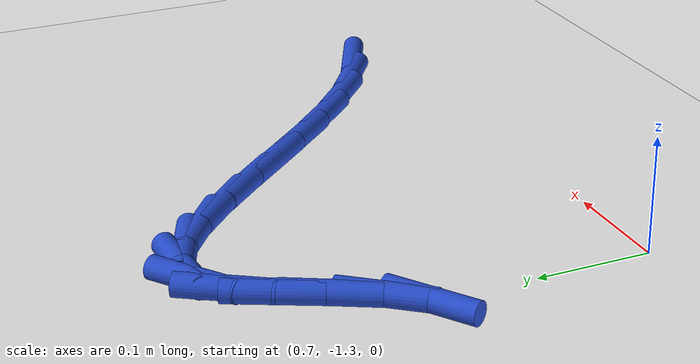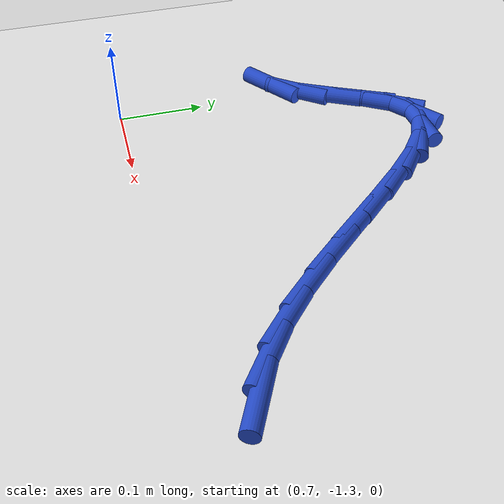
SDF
<sdf version="1.6">
 <world name="default">
  <model name="ground_plane">
   <static>1</static>
   <link name="link">
    <collision name="collision">
     <geometry><plane><normal>0 0 1</normal><size>100 100</size></plane></geometry>
     <surface><friction><ode><mu>100</mu><mu2>50</mu2></ode></friction></surface>
    </collision>
    <visual name="visual">
     <cast_shadows>0</cast_shadows>
     <geometry><plane><normal>0 0 1</normal><size>100 100</size></plane></geometry>
     <material>
      <script><uri>file://media/materials/scripts/gazebo.material</uri><name>Gazebo/WhiteGlow</name></script>
     </material>
    </visual>
   </link>
  </model>
  <model name="line">
   <link name="link_151">
    <pose>1.1584189341192015 -1.241423381884545 0.01 0 1.57 -0.441623012005218</pose>
    <collision name="collision">
     <geometry><cylinder><radius>0.01</radius><length>0.08</length></cylinder></geometry>
    </collision>
    <visual name="visual">
     <material>
      <script><name>Gazebo/Blue</name><uri>file://media/materials/scripts/gazebo.material</uri></script>
     </material>
     <geometry><cylinder><radius>0.01</radius><length>0.08</length></cylinder></geometry>
    </visual>
   </link>
   <link name="link_152">
    <pose>1.118323597264479 -1.2224677190865527 0.01 0 1.57 -0.605119272892293</pose>
    <collision name="collision">
     <geometry><cylinder><radius>0.01</radius><length>0.08</length></cylinder></geometry>
    </collision>
    <visual name="visual">
     <material>
      <script><name>Gazebo/Blue</name><uri>file://media/materials/scripts/gazebo.material</uri></script>
     </material>
     <geometry><cylinder><radius>0.01</radius><length>0.08</length></cylinder></geometry>
    </visual>
   </link>
   <link name="link_153">
    <pose>1.0790924192101035 -1.1953323527211526 0.01 0 1.57 -0.7156170524572396</pose>
    <collision name="collision">
     <geometry><cylinder><radius>0.01</radius><length>0.08</length></cylinder></geometry>
    </collision>
    <visual name="visual">
     <material>
      <script><name>Gazebo/Blue</name><uri>file://media/materials/scripts/gazebo.material</uri></script>
     </material>
     <geometry><cylinder><radius>0.01</radius><length>0.08</length></cylinder></geometry>
    </visual>
   </link>
   <link name="link_154">
    <pose>1.0408931576718583 -1.1621240911688702 0.01 0 1.57 -0.7847021377768517</pose>
    <collision name="collision">
     <geometry><cylinder><radius>0.01</radius><length>0.08</length></cylinder></geometry>
    </collision>
    <visual name="visual">
     <material>
      <script><name>Gazebo/Blue</name><uri>file://media/materials/scripts/gazebo.material</uri></script>
     </material>
     <geometry><cylinder><radius>0.01</radius><length>0.08</length></cylinder></geometry>
    </visual>
   </link>
   <link name="link_155">
    <pose>1.0038808128388772 -1.1251632335883208 0.01 0 1.57 -0.8221436309862784</pose>
    <collision name="collision">
     <geometry><cylinder><radius>0.01</radius><length>0.08</length></cylinder></geometry>
    </collision>
    <visual name="visual">
     <material>
      <script><name>Gazebo/Blue</name><uri>file://media/materials/scripts/gazebo.material</uri></script>
     </material>
     <geometry><cylinder><radius>0.01</radius><length>0.08</length></cylinder></geometry>
    </visual>
   </link>
   <link name="link_156">
    <pose>0.9682103849002954 -1.0867700791381198 0.01 0 1.57 -0.8318449724122389</pose>
    <collision name="collision">
     <geometry><cylinder><radius>0.01</radius><length>0.08</length></cylinder></geometry>
    </collision>
    <visual name="visual">
     <material>
      <script><name>Gazebo/Blue</name><uri>file://media/materials/scripts/gazebo.material</uri></script>
     </material>
     <geometry><cylinder><radius>0.01</radius><length>0.08</length></cylinder></geometry>
    </visual>
   </link>
   <link name="link_157">
    <pose>0.9340368740452475 -1.049264926976883 0.01 0 1.57 -0.8119602844054142</pose>
    <collision name="collision">
     <geometry><cylinder><radius>0.01</radius><length>0.08</length></cylinder></geometry>
    </collision>
    <visual name="visual">
     <material>
      <script><name>Gazebo/Blue</name><uri>file://media/materials/scripts/gazebo.material</uri></script>
     </material>
     <geometry><cylinder><radius>0.01</radius><length>0.08</length></cylinder></geometry>
    </visual>
   </link>
   <link name="link_158">
    <pose>0.9015152804628679 -1.0149680762632247 0.01 0 1.57 -0.7526874030887469</pose>
    <collision name="collision">
     <geometry><cylinder><radius>0.01</radius><length>0.08</length></cylinder></geometry>
    </collision>
    <visual name="visual">
     <material>
      <script><name>Gazebo/Blue</name><uri>file://media/materials/scripts/gazebo.material</uri></script>
     </material>
     <geometry><cylinder><radius>0.01</radius><length>0.08</length></cylinder></geometry>
    </visual>
   </link>
   <link name="link_159">
    <pose>0.8708006043422916 -0.9861998261557612 0.01 0 1.57 -0.6289840023243861</pose>
    <collision name="collision">
     <geometry><cylinder><radius>0.01</radius><length>0.08</length></cylinder></geometry>
    </collision>
    <visual name="visual">
     <material>
      <script><name>Gazebo/Blue</name><uri>file://media/materials/scripts/gazebo.material</uri></script>
     </material>
     <geometry><cylinder><radius>0.01</radius><length>0.08</length></cylinder></geometry>
    </visual>
   </link>
   <link name="link_160">
    <pose>0.8420478458726527 -0.9652804758131073 0.01 0 1.57 -0.38360358318423743</pose>
    <collision name="collision">
     <geometry><cylinder><radius>0.01</radius><length>0.08</length></cylinder></geometry>
    </collision>
    <visual name="visual">
     <material>
      <script><name>Gazebo/Blue</name><uri>file://media/materials/scripts/gazebo.material</uri></script>
     </material>
     <geometry><cylinder><radius>0.01</radius><length>0.08</length></cylinder></geometry>
    </visual>
   </link>
   <link name="link_161">
    <pose>0.8154120052430861 -0.9545303243938785 0.01 0 1.57 0.07126934338846068</pose>
    <collision name="collision">
     <geometry><cylinder><radius>0.01</radius><length>0.08</length></cylinder></geometry>
    </collision>
    <visual name="visual">
     <material>
      <script><name>Gazebo/Blue</name><uri>file://media/materials/scripts/gazebo.material</uri></script>
     </material>
     <geometry><cylinder><radius>0.01</radius><length>0.08</length></cylinder></geometry>
    </visual>
   </link>
   <link name="link_162">
    <pose>0.7910480826427264 -0.9562696710566903 0.01 0 1.57 0.646151248011796</pose>
    <collision name="collision">
     <geometry><cylinder><radius>0.01</radius><length>0.08</length></cylinder></geometry>
    </collision>
    <visual name="visual">
     <material>
      <script><name>Gazebo/Blue</name><uri>file://media/materials/scripts/gazebo.material</uri></script>
     </material>
     <geometry><cylinder><radius>0.01</radius><length>0.08</length></cylinder></geometry>
    </visual>
   </link>
   <link name="link_163">
    <pose>0.7691103606153934 -0.972813984357931 0.01 0 1.57 1.0033765401581822</pose>
    <collision name="collision">
     <geometry><cylinder><radius>0.01</radius><length>0.08</length></cylinder></geometry>
    </collision>
    <visual name="visual">
     <material>
      <script><name>Gazebo/Blue</name><uri>file://media/materials/scripts/gazebo.material</uri></script>
     </material>
     <geometry><cylinder><radius>0.01</radius><length>0.08</length></cylinder></geometry>
    </visual>
   </link>
   <link name="link_164">
    <pose>0.7493564385405603 -1.0038085857255343 0.01 0 1.57 1.1098787981449112</pose>
    <collision name="collision">
     <geometry><cylinder><radius>0.01</radius><length>0.08</length></cylinder></geometry>
    </collision>
    <visual name="visual">
     <material>
      <script><name>Gazebo/Blue</name><uri>file://media/materials/scripts/gazebo.material</uri></script>
     </material>
     <geometry><cylinder><radius>0.01</radius><length>0.08</length></cylinder></geometry>
    </visual>
   </link>
   <link name="link_165">
    <pose>0.7304895100860824 -1.041801398371058 0.01 0 1.57 1.0797443283993935</pose>
    <collision name="collision">
     <geometry><cylinder><radius>0.01</radius><length>0.08</length></cylinder></geometry>
    </collision>
    <visual name="visual">
     <material>
      <script><name>Gazebo/Blue</name><uri>file://media/materials/scripts/gazebo.material</uri></script>
     </material>
     <geometry><cylinder><radius>0.01</radius><length>0.08</length></cylinder></geometry>
    </visual>
   </link>
   <link name="link_166">
    <pose>0.7110395208852504 -1.078174181212778 0.01 0 1.57 0.9052416108319054</pose>
    <collision name="collision">
     <geometry><cylinder><radius>0.01</radius><length>0.08</length></cylinder></geometry>
    </collision>
    <visual name="visual">
     <material>
      <script><name>Gazebo/Blue</name><uri>file://media/materials/scripts/gazebo.material</uri></script>
     </material>
     <geometry><cylinder><radius>0.01</radius><length>0.08</length></cylinder></geometry>
    </visual>
   </link>
   <link name="link_167">
    <pose>0.6897201032581716 -1.1053311500976448 0.01 0 1.57 0.6140101936397173</pose>
    <collision name="collision">
     <geometry><cylinder><radius>0.01</radius><length>0.08</length></cylinder></geometry>
    </collision>
    <visual name="visual">
     <material>
      <script><name>Gazebo/Blue</name><uri>file://media/materials/scripts/gazebo.material</uri></script>
     </material>
     <geometry><cylinder><radius>0.01</radius><length>0.08</length></cylinder></geometry>
    </visual>
   </link>
  </model>
 </world>
</sdf>
